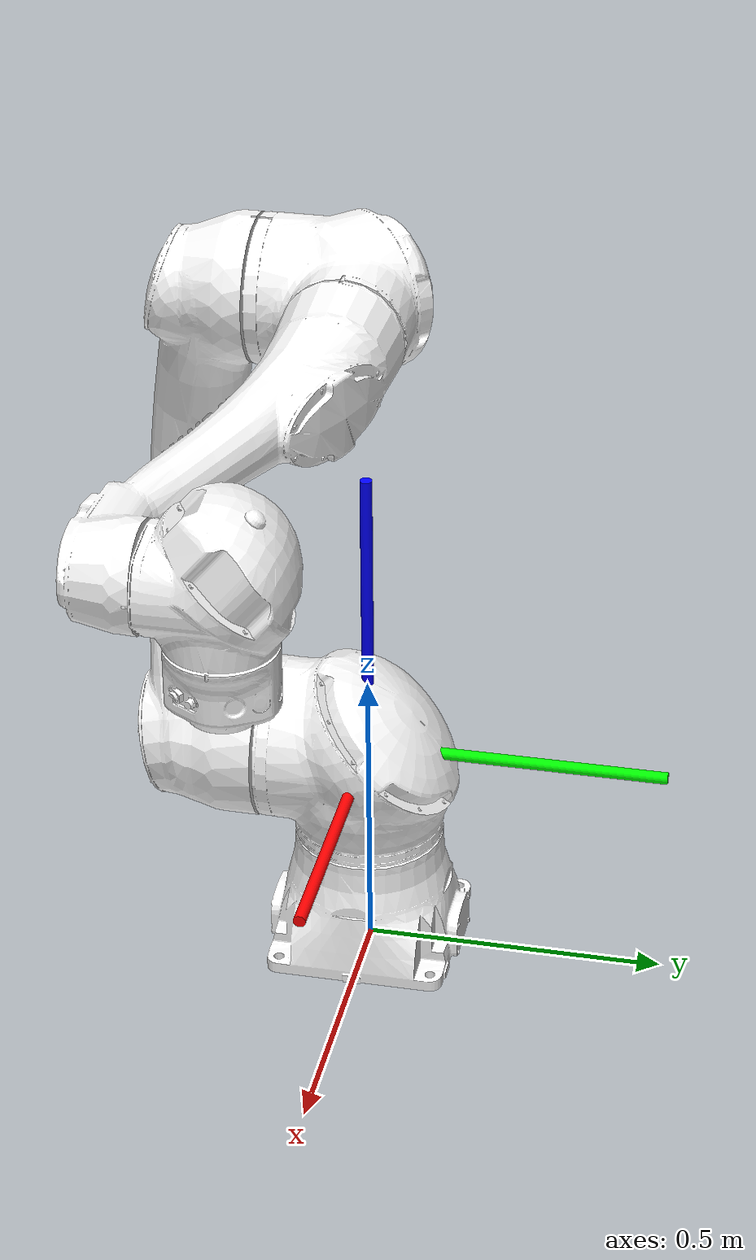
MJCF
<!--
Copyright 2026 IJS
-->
<mujoco model="motoman_hc30">
  <compiler angle="radian" meshdir="assets/"/>

  <option integrator="implicitfast"/>

  <default>
    <default class="robot">
      <material specular="0.5" shininess="0.25"/>
      <joint axis="0 0 1" range="-3.14159 3.14159" />
      <general dyntype="none" biastype="affine" ctrlrange="-3.14159 3.14159" forcerange="-1200 1200"/>
      <position kp="10000" dampratio="1" />
      <!--motor ctrlrange="-1000 1000"/-->

      <default class="visual">
        <geom type="mesh" contype="0" conaffinity="0" group="2"/>
      </default>

      <default class="collision">
        <geom type="mesh" group="3"/>
      </default>
    </default>
  </default>

  <asset>
    <material class="robot" name="white" rgba="0.99 0.99 0.99 1"/>

    <!-- Collision meshes -->
    <mesh name="base_link_c" content_type="model/stl" file="hc20/base_link.stl"/>
    <mesh name="link_1_s_c"  content_type="model/stl" file="hc20/link_1_s.stl"/>
    <mesh name="link_2_l_c"  content_type="model/stl" file="hc20/link_2_l.stl"/>
    <mesh name="link_3_u_c"  content_type="model/stl" file="hc20/link_3_u.stl"/>
    <mesh name="link_4_r_c"  content_type="model/stl" file="hc20/link_4_r.stl"/>
    <mesh name="link_5_b_c"  content_type="model/stl" file="hc20/link_5_b.stl"/>
    <mesh name="link_6_t_c"  content_type="model/stl" file="hc20/link_6_t.stl"/>

    <!-- Visual meshes -->
    <mesh name="base_link" content_type="model/obj" file="hc20/base_link.obj"/>
    <mesh name="link_1_s"  content_type="model/obj" file="hc20/link_1_s.obj"/>
    <mesh name="link_2_l"  content_type="model/obj" file="hc20/link_2_l.obj"/>
    <mesh name="link_3_u"  content_type="model/obj" file="hc20/link_3_u.obj"/>
    <mesh name="link_4_r"  content_type="model/obj" file="hc20/link_4_r.obj"/>
    <mesh name="link_5_b"  content_type="model/obj" file="hc20/link_5_b.obj"/>
    <mesh name="link_6_t"  content_type="model/obj" file="hc20/link_6_t.obj"/>
  </asset>

  <worldbody>
    <body name="robot_base" mocap="true" childclass="robot">
      <body name="base" pos="0 0 0.38" childclass="robot">
        <site name="x" group="1" pos="0.25 0 0" quat="0.707107 0 0.707107 0" size="0.01 0.25" type="cylinder" rgba="1 0 0 1"/>
        <site name="y" group="1" pos="0 0.25 0" quat="0.707107 0.707107 0 0" size="0.01 0.25" type="cylinder" rgba="0 1 0 1"/>
        <site name="z" group="1" pos="0 0 0.25" size="0.01 0.25" type="cylinder" rgba="0 0 1 1"/>
        <geom type="mesh" pos="0 0 -0.38" material="white" mesh="base_link" class="visual"/>
        <geom type="mesh" pos="0 0 -0.38" mesh="base_link_c" class="collision"/>
        <body name="link1" pos="0 0 0">
          <joint name="joint1" pos="0 0 0" axis="0 0 1" range="-3.14159 3.14159" actuatorfrcrange="-917.28 917.28"/>
          <geom type="mesh" material="white" mesh="link_1_s" class="visual"/>
          <geom type="mesh" mesh="link_1_s_c" class="collision"/>
          <body name="link2" pos="0 0 0">
            <joint name="joint2" pos="0 0 0" axis="0 1 0" range="-3.14159 3.14159" actuatorfrcrange="-1223.04 1223.04"/>
            <geom type="mesh" material="white" mesh="link_2_l" class="visual"/>
            <geom type="mesh" mesh="link_2_l_c" class="collision"/>
            <body name="link3" pos="0 0 0.82">
              <joint name="joint3" pos="0 0 0" axis="0 -1 0" range="-1.16937 4.31096" actuatorfrcrange="-642.88 642.88"/>
              <geom type="mesh" material="white" mesh="link_3_u" class="visual"/>
              <geom type="mesh" mesh="link_3_u_c" class="collision"/>
              <body name="link4" pos="0.88 0 0">
                <joint name="joint4" pos="0 0 0" axis="-1 0 0" range="-3.66519 3.66519" actuatorfrcrange="-368.48 368.48"/>
                <geom type="mesh" material="white" mesh="link_4_r" class="visual"/>
                <geom type="mesh" mesh="link_4_r_c" class="collision"/>
                <body name="link5" axisangle="0 1 0 1.5707963267948966" >
                  <joint name="joint5" pos="0 0 0" axis="0 -1 0" range="-1.5708 4.7123"  actuatorfrcrange="-141.12 141.12"/>
                  <geom type="mesh" material="white" mesh="link_5_b" class="visual"/>
                  <geom type="mesh" mesh="link_5_b_c" class="collision"/>
                  <body name="link6">
                    <joint name="joint6" pos="0 0 0" axis="-1 0 0" range="-3.66519 3.66519" actuatorfrcrange="-141.12 141.12"/>
                    <geom type="mesh" material="white" mesh="link_6_t" class="visual"/>
                    <geom type="mesh" mesh="link_6_t_c" class="collision"/>
                    <body name="flange" pos="0.2 0 0" axisangle="0 1 0 1.5708">
                      <site group="3" type="cylinder" pos="0.125 0 0" quat="0.70711 0 0.70711 0" size="0.005 0.125" rgba="1 0 0 1"/>
                      <site group="3" type="cylinder" pos="0 0.125 0" quat="0.70711 0.70711 0 0" size="0.005 0.125" rgba="0 1 0 1"/>
                      <site group="3" type="cylinder" pos="0 0 0.125" quat="1 0 0 0" size="0.005 0.125" rgba="0 0 1 1"/>
                      <site group="3" name="flange" pos="0 0 0" axisangle="0 0 1 3.14159"/>
                      <body name="TCP" pos="0 0 0" axisangle="0 0 1 3.14159">
                        <site group="4" type="cylinder" pos="0.0625 0 0" quat="0.70711 0 0.70711 0" size="0.005 0.0625" rgba="1 0 0 1"/>
                        <site group="4" type="cylinder" pos="0 0.0625 0" quat="0.70711 0.70711 0 0" size="0.005 0.0625" rgba="0 1 0 1"/>
                        <site group="4" type="cylinder" pos="0 0 0.0626" quat="1 0 0 0" size="0.005 0.0625" rgba="0 0 1 1"/>
                        <site group="4" name="TCP" pos="0 0 0" size="0.008" />
                        <camera name="Robot" pos="0.1 0 0" xyaxes="1 0 0 0 -1 0" fovy="45"/>
                      </body>
                    </body>
                  </body>
                </body>
              </body>
            </body>
          </body>
        </body>
      </body>
    </body>
  </worldbody>

  <contact>
    <exclude name="exclude_1" body1="base" body2="link1"/>
    <exclude name="exclude_2" body1="link1" body2="link2"/>
  </contact>

  <actuator>
    <position class="robot" name="actuator1" joint="joint1" kp="20000" />
    <position class="robot" name="actuator2" joint="joint2" kp="80000" />
    <position class="robot" name="actuator3" joint="joint3" kp="20000" ctrlrange="-1.16937 4.31096"/>
    <position class="robot" name="actuator4" joint="joint4" kp="1000"  dampratio="2" ctrlrange="-3.66519 3.66519"/>
    <position class="robot" name="actuator5" joint="joint5" kp="500"   dampratio="2" ctrlrange="-1.5708 4.7123" />
    <position class="robot" name="actuator6" joint="joint6" kp="50"    dampratio="2" ctrlrange="-3.66519 3.66519"/>
  </actuator>

  <sensor>
    <framepos name="pos" objtype="site" objname="TCP" />
    <framequat name="ori" objtype="site" objname="TCP" />
    <framelinvel name="v" objtype="site" objname="TCP" />
    <frameangvel name="w" objtype="site" objname="TCP" />
    <force name="force" site="TCP" noise="0.5" />
    <torque name="torque" site="TCP" noise="0.5" />
    <jointpos name="pos_joint1" joint="joint1" />
    <jointpos name="pos_joint2" joint="joint2" />
    <jointpos name="pos_joint3" joint="joint3" />
    <jointpos name="pos_joint4" joint="joint4" />
    <jointpos name="pos_joint5" joint="joint5" />
    <jointpos name="pos_joint6" joint="joint6" />
    <jointvel name="vel_joint1" joint="joint1" />
    <jointvel name="vel_joint2" joint="joint2" />
    <jointvel name="vel_joint3" joint="joint3" />
    <jointvel name="vel_joint4" joint="joint4" />
    <jointvel name="vel_joint5" joint="joint5" />
    <jointvel name="vel_joint6" joint="joint6" />
  </sensor>

</mujoco>
